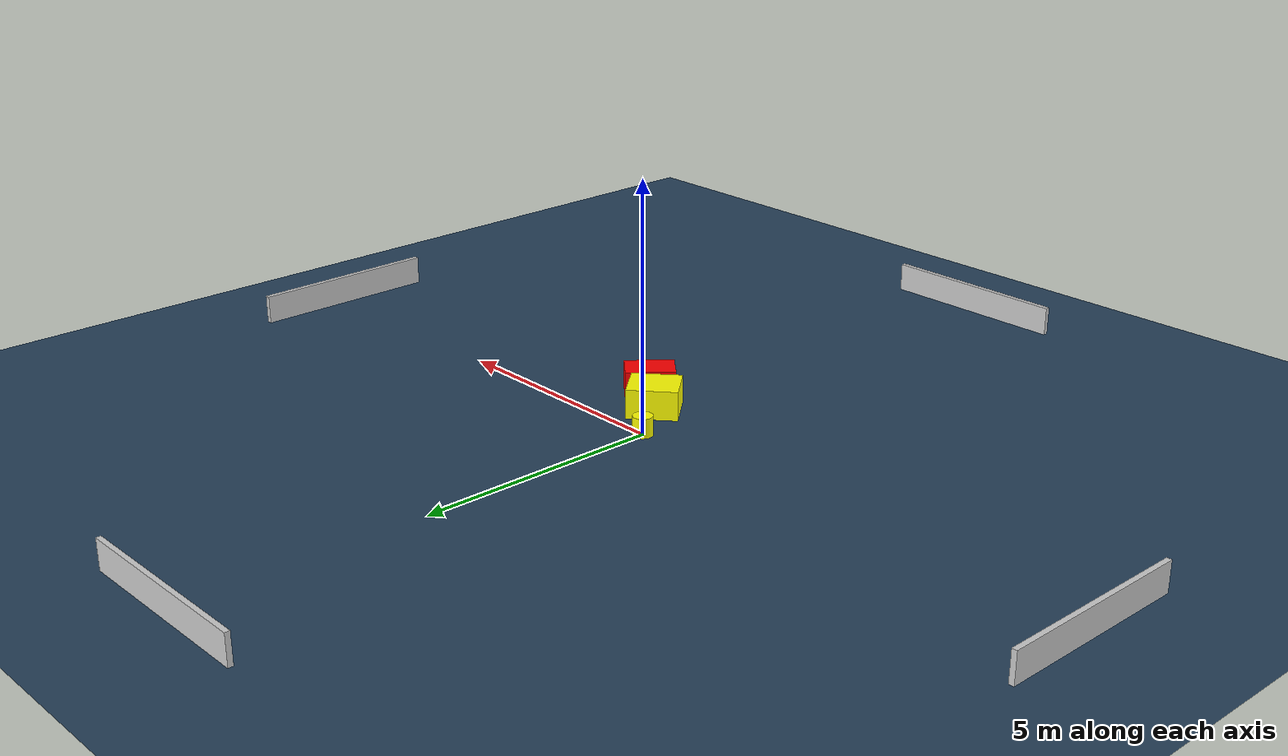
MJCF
<?xml version="1.0" ?>
<mujoco model="generated_environment">
  <option timestep="0.01" integrator="RK4" cone="elliptic"/>
  <default>
    <geom density="1"/>
  </default>
  <asset>
    <texture builtin="gradient" height="3072" name="skybox" rgb1="0.3 0.5 0.7" rgb2="0 0 0" type="skybox" width="512"/>
    <texture builtin="checker" height="300" name="groundplane" rgb1="0.2 0.3 0.4" rgb2="0.1 0.2 0.3" type="2d" width="300"/>
    <material name="groundplane" reflectance="0.2" texrepeat="5 5" texture="groundplane"/>
  </asset>
  <worldbody>
    <light dir="0 0 -1" directional="true" pos="0 0 1.5"/>
    <geom condim="3" friction="0.5 0.005 0.001" material="groundplane" name="floor" pos="0 0 0" size="0 0 0.05" type="plane"/>
    <body name="walls">
      <geom name="wall_1" condim="4" pos="-10.0 0.0 0.3" rgba="0.800000011920929 0.800000011920929 0.800000011920929 1.0" size="0.05 2.0 0.3" type="box"/>
      <geom name="wall_2" condim="4" pos="10.0 0.0 0.3" rgba="0.800000011920929 0.800000011920929 0.800000011920929 1.0" size="0.05 2.0 0.3" type="box"/>
      <geom name="wall_3" condim="4" pos="0.0 -10.0 0.3" rgba="0.800000011920929 0.800000011920929 0.800000011920929 1.0" size="2.0 0.05 0.3" type="box"/>
      <geom name="wall_4" condim="4" pos="0.0 10.0 0.3" rgba="0.800000011920929 0.800000011920929 0.800000011920929 1.0" size="2.0 0.05 0.3" type="box"/>
    </body>
    <body name="robot">
      <joint name="joint_x" type="slide" pos="0 0 0" axis="1 0 0"/>
      <joint name="joint_y" type="slide" pos="0 0 0" axis="0 1 0"/>
      <geom name="robot" type="cylinder" pos="0.0 0.0 0.2" size="0.2 0.2 0.0" mass="5.0" friction="1.0 0.005 0.0001" condim="4" rgba="1.0 1.0 0.0 1.0"/>
    </body>
    <body name="obstacle_1_movable">
      <geom name="obstacle_1_movable" condim="4" pos="0.6796343898416208 -0.9290370162016751 0.3" euler="0 0 130.53689898461488" friction="0.0 0.005 0.001" rgba="1.0 1.0 0.0 1.0" size="0.4399107928655991 0.5071456793244309 0.3" type="box" mass="0.1"/>
      <joint type="free"/>
    </body>
    <body name="obstacle_2_static">
      <geom name="obstacle_2_static" condim="4" pos="1.3606367786355194 -1.4371447675534736 0.3" euler="0 0 230.25545263257172" friction="0.0 0.005 0.001" rgba="1.0 0.0 0.0 1.0" size="0.5028972932651696 0.3284332154484705 0.3" type="box"/>
    </body>
  </worldbody>
  <actuator>
    <motor name="actuator_x" joint="joint_x" gear="1" ctrlrange="-1 1"/>
    <motor name="actuator_y" joint="joint_y" gear="1" ctrlrange="-1 1"/>
  </actuator>
</mujoco>
